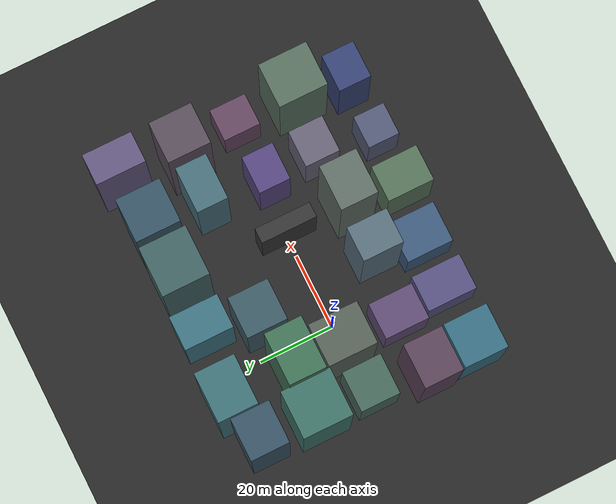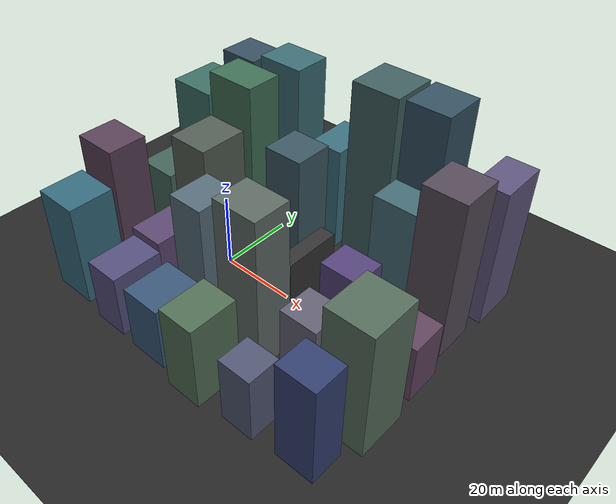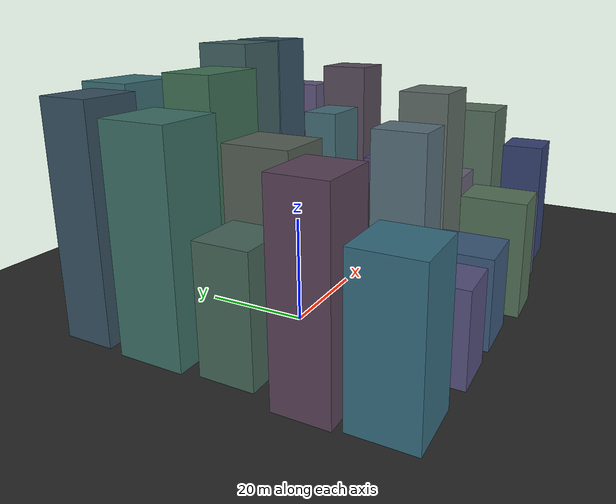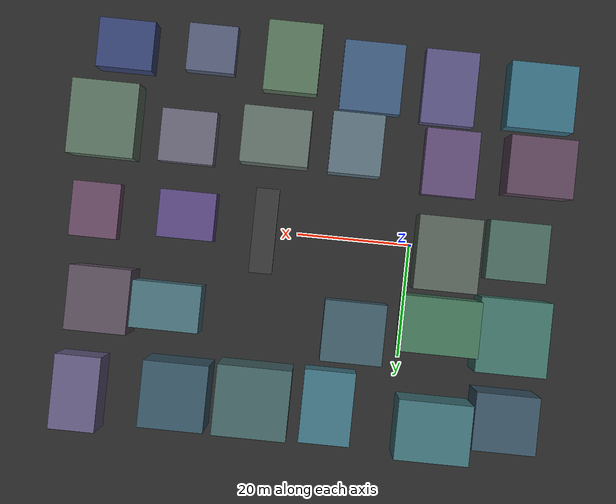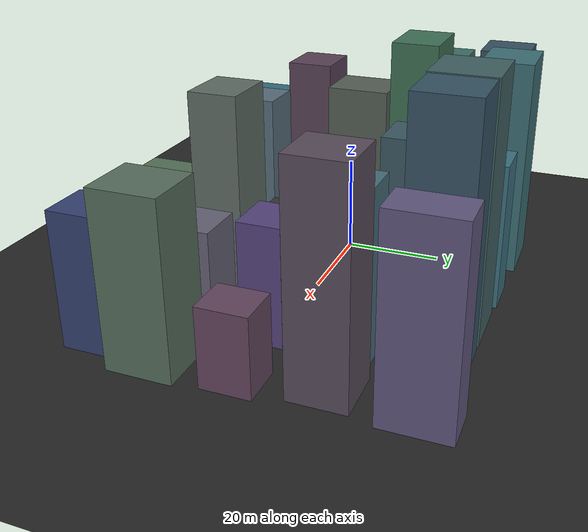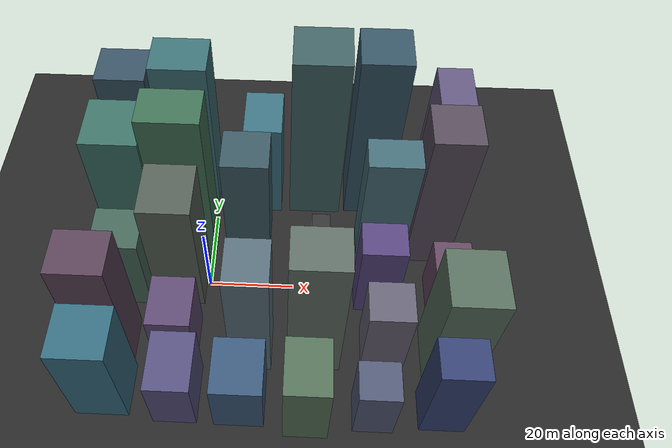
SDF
<?xml version="1.0" ?>
<sdf version="1.8">
  <world name="stratford_synthetic">
    <physics name="1ms" type="ignored"><max_step_size>0.001</max_step_size><real_time_factor>1.0</real_time_factor></physics>
    <plugin filename="gz-sim-physics-system" name="gz::sim::systems::Physics"/>
    <plugin filename="gz-sim-user-commands-system" name="gz::sim::systems::UserCommands"/>
    <plugin filename="gz-sim-scene-broadcaster-system" name="gz::sim::systems::SceneBroadcaster"/>
    <plugin filename="gz-sim-sensors-system" name="gz::sim::systems::Sensors"><render_engine>ogre2</render_engine></plugin>
    <plugin filename="gz-sim-navsat-system" name="gz::sim::systems::NavSat"/>

    <spherical_coordinates>
      <surface_model>EARTH_WGS84</surface_model>
      <latitude_deg>51.5413</latitude_deg>
      <longitude_deg>-0.0156</longitude_deg>
      <elevation>10.0</elevation>
      <heading_deg>0</heading_deg>
    </spherical_coordinates>

    <light type="directional" name="sun"><cast_shadows>true</cast_shadows><pose>0 0 50 0 0 0</pose><direction>-0.5 0.5 -0.9</direction></light>
    <model name="ground"><static>true</static><link name="link"><collision name="collision"><geometry><plane><normal>0 0 1</normal></plane></geometry></collision><visual name="visual"><geometry><plane><normal>0 0 1</normal><size>200 200</size></plane></geometry><material><ambient>0.15 0.15 0.15 1</ambient></material></visual></link></model>

    <model name="skyscrape_0">
      <static>true</static><pose>-20.206572123922427 -28.160671193604422 13.94443119211696 0 0 0</pose>
      <link name="link">
        <collision name="col"><geometry><box><size>11.743493773286254 11.64197254766348 27.88886238423392</size></box></geometry></collision>
        <visual name="vis"><geometry><box><size>11.743493773286254 11.64197254766348 27.88886238423392</size></box></geometry>
        <material><ambient>0.20925919773201773 0.42359728862824303 0.4993670801132786 1</ambient></material></visual>
      </link>
    </model>
    <model name="skyscrape_1">
      <static>true</static><pose>-21.00177362569747 -15.811145967643753 18.27163097869996 0 0 0</pose>
      <link name="link">
        <collision name="col"><geometry><box><size>11.589554703418699 10.233454471346832 36.54326195739992</size></box></geometry></collision>
        <visual name="vis"><geometry><box><size>11.589554703418699 10.233454471346832 36.54326195739992</size></box></geometry>
        <material><ambient>0.3482686392366915 0.2592124773522377 0.3414754753683219 1</ambient></material></visual>
      </link>
    </model>
    <model name="skyscrape_2">
      <static>true</static><pose>-18.831233059990215 -0.8122499727520078 11.686559416395406 0 0 0</pose>
      <link name="link">
        <collision name="col"><geometry><box><size>10.674765317344116 10.425177337662337 23.373118832790812</size></box></geometry></collision>
        <visual name="vis"><geometry><box><size>10.674765317344116 10.425177337662337 23.373118832790812</size></box></geometry>
        <material><ambient>0.2709905428741024 0.39736996093440186 0.349990202509749 1</ambient></material></visual>
      </link>
    </model>
    <model name="skyscrape_3">
      <static>true</static><pose>-18.864192024674615 13.995292729899266 20.464325194275276 0 0 0</pose>
      <link name="link">
        <collision name="col"><geometry><box><size>12.39646011653522 12.995208594090284 40.92865038855055</size></box></geometry></collision>
        <visual name="vis"><geometry><box><size>12.39646011653522 12.995208594090284 40.92865038855055</size></box></geometry>
        <material><ambient>0.23641721669992297 0.4374573246105319 0.3972267453523273 1</ambient></material></visual>
      </link>
    </model>
    <model name="skyscrape_4">
      <static>true</static><pose>-18.90819601713886 28.837223149100186 21.742183625800273 0 0 0</pose>
      <link name="link">
        <collision name="col"><geometry><box><size>11.042373671825747 10.047555850924628 43.484367251600546</size></box></geometry></collision>
        <visual name="vis"><geometry><box><size>11.042373671825747 10.047555850924628 43.484367251600546</size></box></geometry>
        <material><ambient>0.21251052270144644 0.31406531808884813 0.37972099906411827 1</ambient></material></visual>
      </link>
    </model>
    <model name="skyscrape_5">
      <static>true</static><pose>-4.2104989558389105 -28.4539006081256 8.498557686301297 0 0 0</pose>
      <link name="link">
        <collision name="col"><geometry><box><size>9.446800348209836 13.167466321405527 16.997115372602593</size></box></geometry></collision>
        <visual name="vis"><geometry><box><size>9.446800348209836 13.167466321405527 16.997115372602593</size></box></geometry>
        <material><ambient>0.33029482209851946 0.3125826440717602 0.49401984666789295 1</ambient></material></visual>
      </link>
    </model>
    <model name="skyscrape_6">
      <static>true</static><pose>-5.689405606676921 -15.204051564009005 9.003178692139688 0 0 0</pose>
      <link name="link">
        <collision name="col"><geometry><box><size>9.546746455622598 11.830101384598489 18.006357384279376</size></box></geometry></collision>
        <visual name="vis"><geometry><box><size>9.546746455622598 11.830101384598489 18.006357384279376</size></box></geometry>
        <material><ambient>0.36543693125749366 0.28858519970409213 0.4453545599742723 1</ambient></material></visual>
      </link>
    </model>
    <model name="skyscrape_7">
      <static>true</static><pose>-6.387123792081317 0.8408552462472785 17.900773064153235 0 0 0</pose>
      <link name="link">
        <collision name="col"><geometry><box><size>11.149122840468033 12.930440209701423 35.80154612830647</size></box></geometry></collision>
        <visual name="vis"><geometry><box><size>11.149122840468033 12.930440209701423 35.80154612830647</size></box></geometry>
        <material><ambient>0.32914294792594 0.3712436517053661 0.3354499084712321 1</ambient></material></visual>
      </link>
    </model>
    <model name="skyscrape_8">
      <static>true</static><pose>-6.111263247302926 13.284001592574215 23.440644979392253 0 0 0</pose>
      <link name="link">
        <collision name="col"><geometry><box><size>13.433358218920773 9.706686964079346 46.88128995878451</size></box></geometry></collision>
        <visual name="vis"><geometry><box><size>13.433358218920773 9.706686964079346 46.88128995878451</size></box></geometry>
        <material><ambient>0.2492153332916028 0.4394462049081929 0.33161818733267806 1</ambient></material></visual>
      </link>
    </model>
    <model name="skyscrape_9">
      <static>true</static><pose>-6.6731223654583 31.562632449277697 22.27149974768229 0 0 0</pose>
      <link name="link">
        <collision name="col"><geometry><box><size>12.94481525710863 10.416655285294864 44.54299949536458</size></box></geometry></collision>
        <visual name="vis"><geometry><box><size>12.94481525710863 10.416655285294864 44.54299949536458</size></box></geometry>
        <material><ambient>0.23521169081030247 0.4338701421610157 0.4584391434053086 1</ambient></material></visual>
      </link>
    </model>
    <model name="skyscrape_10">
      <static>true</static><pose>9.618828509979519 -28.96471442442037 8.516226384677786 0 0 0</pose>
      <link name="link">
        <collision name="col"><geometry><box><size>10.814616454289883 12.438182196585533 17.032452769355572</size></box></geometry></collision>
        <visual name="vis"><geometry><box><size>10.814616454289883 12.438182196585533 17.032452769355572</size></box></geometry>
        <material><ambient>0.2305007897243845 0.3473017325592503 0.47970742521228693 1</ambient></material></visual>
      </link>
    </model>
    <model name="skyscrape_11">
      <static>true</static><pose>11.333429513335336 -16.587846849406333 18.326744699581763 0 0 0</pose>
      <link name="link">
        <collision name="col"><geometry><box><size>9.08715525382412 10.66223637534102 36.653489399163526</size></box></geometry></collision>
        <visual name="vis"><geometry><box><size>9.08715525382412 10.66223637534102 36.653489399163526</size></box></geometry>
        <material><ambient>0.3443704200701876 0.4317824054258687 0.4802295615069873 1</ambient></material></visual>
      </link>
    </model>
    <model name="skyscrape_12">
      <static>true</static><pose>8.594928840691985 16.12593319716822 15.725880407836591 0 0 0</pose>
      <link name="link">
        <collision name="col"><geometry><box><size>10.859918129171241 10.72098606501832 31.451760815673182</size></box></geometry></collision>
        <visual name="vis"><geometry><box><size>10.859918129171241 10.72098606501832 31.451760815673182</size></box></geometry>
        <material><ambient>0.23150120123105003 0.34506891397590805 0.38505353488453326 1</ambient></material></visual>
      </link>
    </model>
    <model name="skyscrape_13">
      <static>true</static><pose>11.867473327230838 29.60082558981379 14.748319893340753 0 0 0</pose>
      <link name="link">
        <collision name="col"><geometry><box><size>8.96462115253725 12.882909960431935 29.496639786681506</size></box></geometry></collision>
        <visual name="vis"><geometry><box><size>8.96462115253725 12.882909960431935 29.496639786681506</size></box></geometry>
        <material><ambient>0.23593392406741975 0.43841627042712816 0.49820246354129427 1</ambient></material></visual>
      </link>
    </model>
    <model name="skyscrape_14">
      <static>true</static><pose>23.898240664907306 -30.92733522187941 11.317491672520006 0 0 0</pose>
      <link name="link">
        <collision name="col"><geometry><box><size>9.566956621739754 12.376031121177354 22.634983345040013</size></box></geometry></collision>
        <visual name="vis"><geometry><box><size>9.566956621739754 12.376031121177354 22.634983345040013</size></box></geometry>
        <material><ambient>0.32843931261992687 0.43968052920093836 0.34093092882714987 1</ambient></material></visual>
      </link>
    </model>
    <model name="skyscrape_15">
      <static>true</static><pose>25.331359264339373 -16.428283296567507 20.889640840100885 0 0 0</pose>
      <link name="link">
        <collision name="col"><geometry><box><size>11.793198603592295 9.820136075687321 41.77928168020177</size></box></geometry></collision>
        <visual name="vis"><geometry><box><size>11.793198603592295 9.820136075687321 41.77928168020177</size></box></geometry>
        <material><ambient>0.3705551336466266 0.42259904732116704 0.3971628625229268 1</ambient></material></visual>
      </link>
    </model>
    <model name="skyscrape_16">
      <static>true</static><pose>24.861223383446937 29.41247466281004 24.866503428821133 0 0 0</pose>
      <link name="link">
        <collision name="col"><geometry><box><size>12.814427812707788 12.190626041531164 49.733006857642266</size></box></geometry></collision>
        <visual name="vis"><geometry><box><size>12.814427812707788 12.190626041531164 49.733006857642266</size></box></geometry>
        <material><ambient>0.2509960714369145 0.3772136134889561 0.3815343965272296 1</ambient></material></visual>
      </link>
    </model>
    <model name="skyscrape_17">
      <static>true</static><pose>38.337173908224514 -31.152637345971126 8.83387712645212 0 0 0</pose>
      <link name="link">
        <collision name="col"><geometry><box><size>8.637395726171857 8.358306485782983 17.66775425290424</size></box></geometry></collision>
        <visual name="vis"><geometry><box><size>8.637395726171857 8.358306485782983 17.66775425290424</size></box></geometry>
        <material><ambient>0.31951302844150564 0.34813394679706655 0.45693087051076187 1</ambient></material></visual>
      </link>
    </model>
    <model name="skyscrape_18">
      <static>true</static><pose>40.952467670085525 -15.189224394955158 10.604422701118349 0 0 0</pose>
      <link name="link">
        <collision name="col"><geometry><box><size>9.744825513893167 9.305924846982895 21.208845402236697</size></box></geometry></collision>
        <visual name="vis"><geometry><box><size>9.744825513893167 9.305924846982895 21.208845402236697</size></box></geometry>
        <material><ambient>0.3973978386074975 0.3820871259609647 0.45656797860299697 1</ambient></material></visual>
      </link>
    </model>
    <model name="skyscrape_19">
      <static>true</static><pose>39.72216866537774 -1.4041059749262952 11.933126170396669 0 0 0</pose>
      <link name="link">
        <collision name="col"><geometry><box><size>9.944751616564073 8.40841872410864 23.866252340793338</size></box></geometry></collision>
        <visual name="vis"><geometry><box><size>9.944751616564073 8.40841872410864 23.866252340793338</size></box></geometry>
        <material><ambient>0.33515783529211673 0.2674819449891026 0.4917729649232926 1</ambient></material></visual>
      </link>
    </model>
    <model name="skyscrape_20">
      <static>true</static><pose>41.66052125412641 14.805309148901845 16.59578274733758 0 0 0</pose>
      <link name="link">
        <collision name="col"><geometry><box><size>12.240405056118998 8.24851961461773 33.19156549467516</size></box></geometry></collision>
        <visual name="vis"><geometry><box><size>12.240405056118998 8.24851961461773 33.19156549467516</size></box></geometry>
        <material><ambient>0.2702686536587972 0.4269428685393599 0.46817865222998883 1</ambient></material></visual>
      </link>
    </model>
    <model name="skyscrape_21">
      <static>true</static><pose>38.28399158731686 29.641118535406058 24.942169472410214 0 0 0</pose>
      <link name="link">
        <collision name="col"><geometry><box><size>11.274400150007544 11.50766173739564 49.88433894482043</size></box></geometry></collision>
        <visual name="vis"><geometry><box><size>11.274400150007544 11.50766173739564 49.88433894482043</size></box></geometry>
        <material><ambient>0.20629932055946612 0.32201184837300134 0.38766155253627155 1</ambient></material></visual>
      </link>
    </model>
    <model name="skyscrape_22">
      <static>true</static><pose>53.1752270135244 -30.06979492930532 13.49360046683566 0 0 0</pose>
      <link name="link">
        <collision name="col"><geometry><box><size>9.831317906323669 8.607846475186287 26.98720093367132</size></box></geometry></collision>
        <visual name="vis"><geometry><box><size>9.831317906323669 8.607846475186287 26.98720093367132</size></box></geometry>
        <material><ambient>0.20625612987518788 0.25379893731926007 0.4457219102381415 1</ambient></material></visual>
      </link>
    </model>
    <model name="skyscrape_23">
      <static>true</static><pose>55.6211872750315 -16.665289840733568 17.06380087857528 0 0 0</pose>
      <link name="link">
        <collision name="col"><geometry><box><size>11.746507675470157 13.033153853563908 34.12760175715056</size></box></geometry></collision>
        <visual name="vis"><geometry><box><size>11.746507675470157 13.033153853563908 34.12760175715056</size></box></geometry>
        <material><ambient>0.33921031248826594 0.43200625435468043 0.36433132672196067 1</ambient></material></visual>
      </link>
    </model>
    <model name="skyscrape_24">
      <static>true</static><pose>56.1710056399595 -0.7496036401077504 7.855895423348375 0 0 0</pose>
      <link name="link">
        <collision name="col"><geometry><box><size>8.53054009951954 9.779573337632318 15.71179084669675</size></box></geometry></collision>
        <visual name="vis"><geometry><box><size>8.53054009951954 9.779573337632318 15.71179084669675</size></box></geometry>
        <material><ambient>0.38775677038735346 0.2739725526233127 0.3718661453945565 1</ambient></material></visual>
      </link>
    </model>
    <model name="skyscrape_25">
      <static>true</static><pose>53.00864497189081 14.61389507612325 21.471672570379962 0 0 0</pose>
      <link name="link">
        <collision name="col"><geometry><box><size>10.730800515835103 11.2231679883784 42.943345140759924</size></box></geometry></collision>
        <visual name="vis"><geometry><box><size>10.730800515835103 11.2231679883784 42.943345140759924</size></box></geometry>
        <material><ambient>0.34150718175109773 0.29675501916776875 0.3524103756555838 1</ambient></material></visual>
      </link>
    </model>
    <model name="skyscrape_26">
      <static>true</static><pose>55.566627582892025 31.159647529672657 18.73548208105054 0 0 0</pose>
      <link name="link">
        <collision name="col"><geometry><box><size>8.074426793123491 13.055839200805895 37.47096416210108</size></box></geometry></collision>
        <visual name="vis"><geometry><box><size>8.074426793123491 13.055839200805895 37.47096416210108</size></box></geometry>
        <material><ambient>0.3781444528117912 0.3393672646023628 0.4929176842635601 1</ambient></material></visual>
      </link>
    </model>
    <model name="dead_end">
      <static>true</static><pose>26 0 10 0 0 0</pose>
      <link name="link">
        <collision name="col"><geometry><box><size>4 15 20</size></box></geometry></collision>
        <visual name="vis"><geometry><box><size>4 15 20</size></box></geometry><material><ambient>0.2 0.2 0.2 1</ambient></material></visual>
      </link>
    </model>
  </world>
</sdf>
